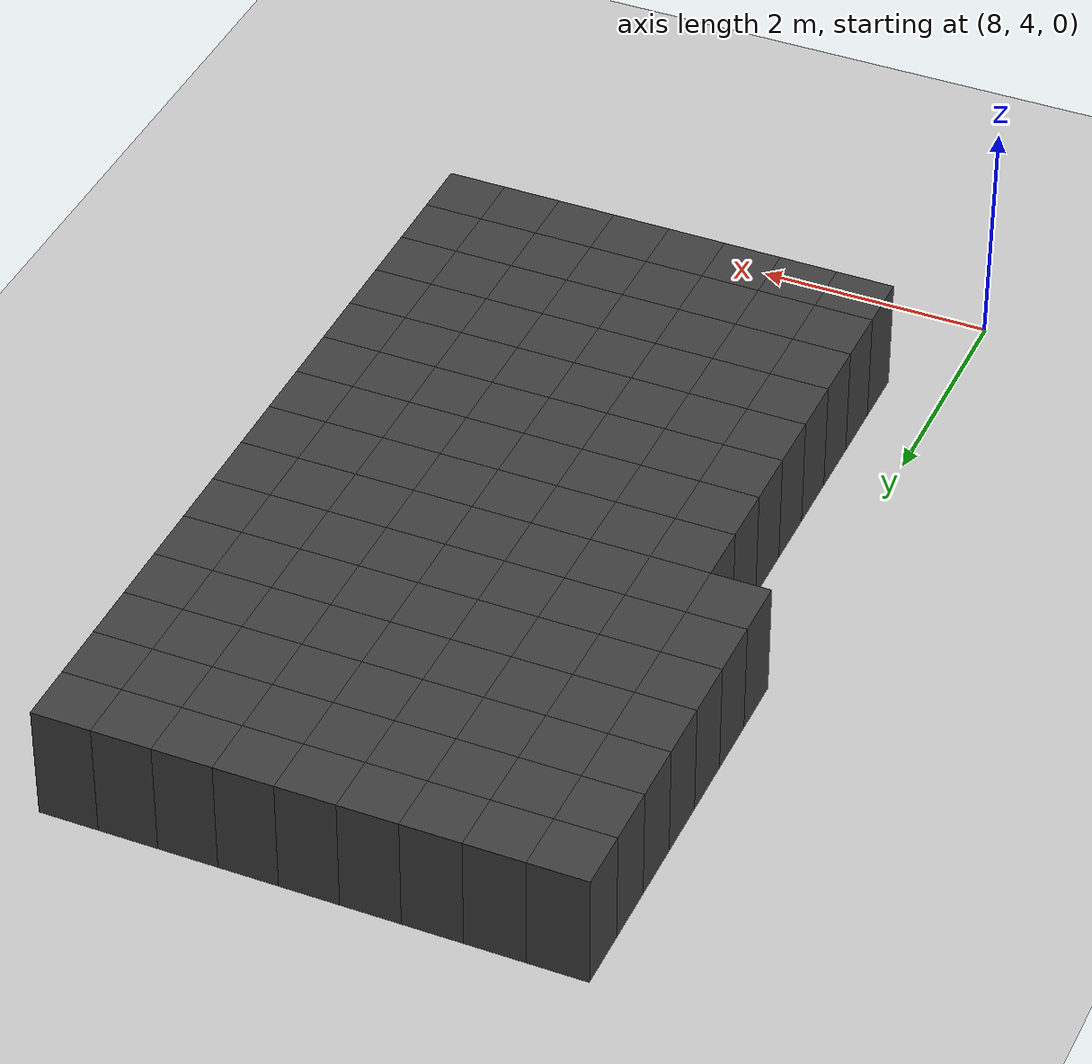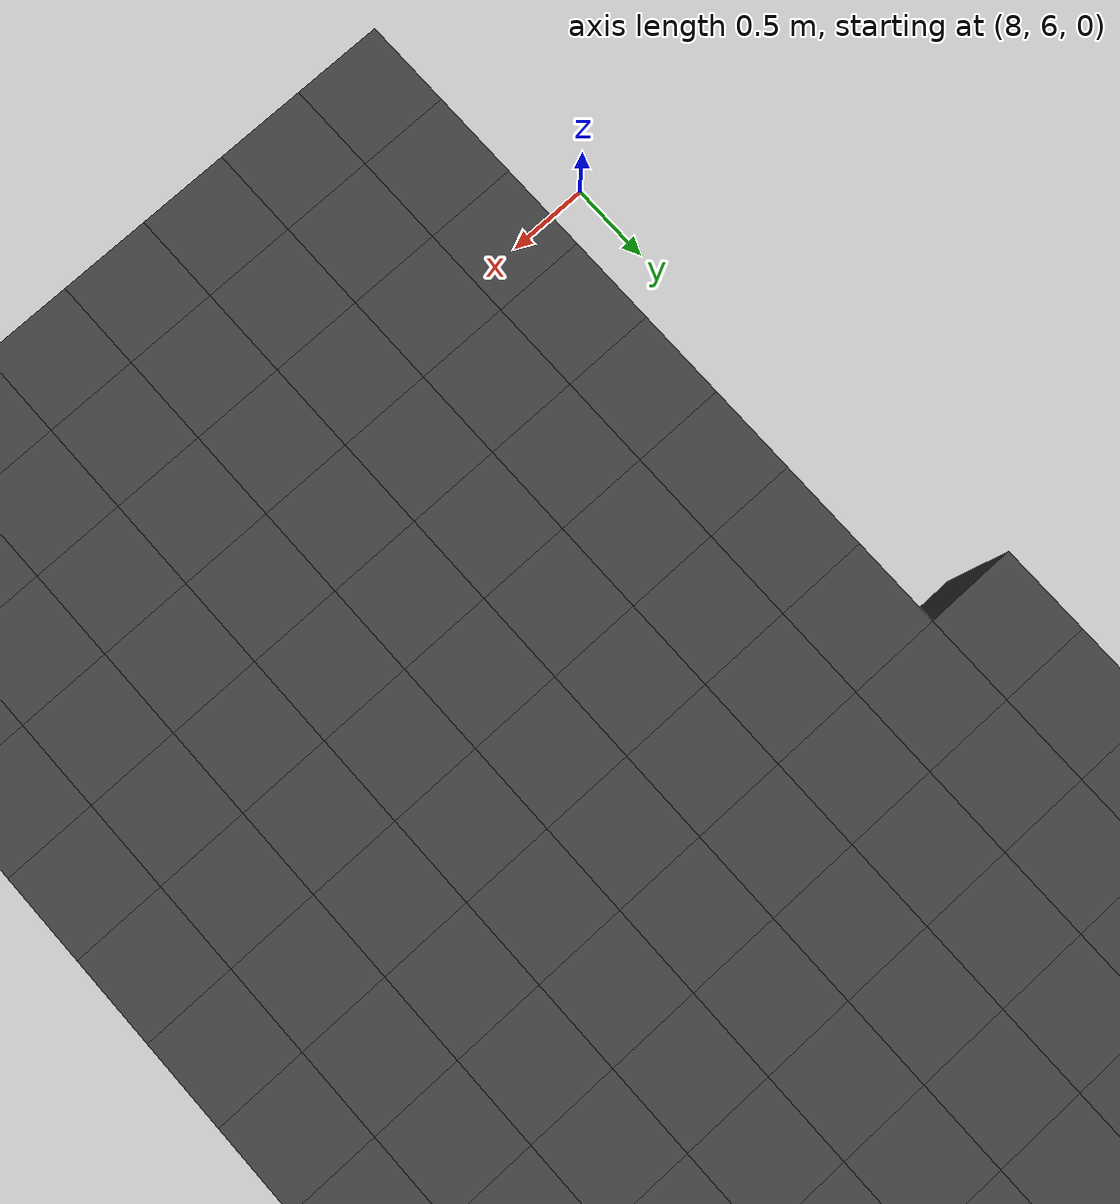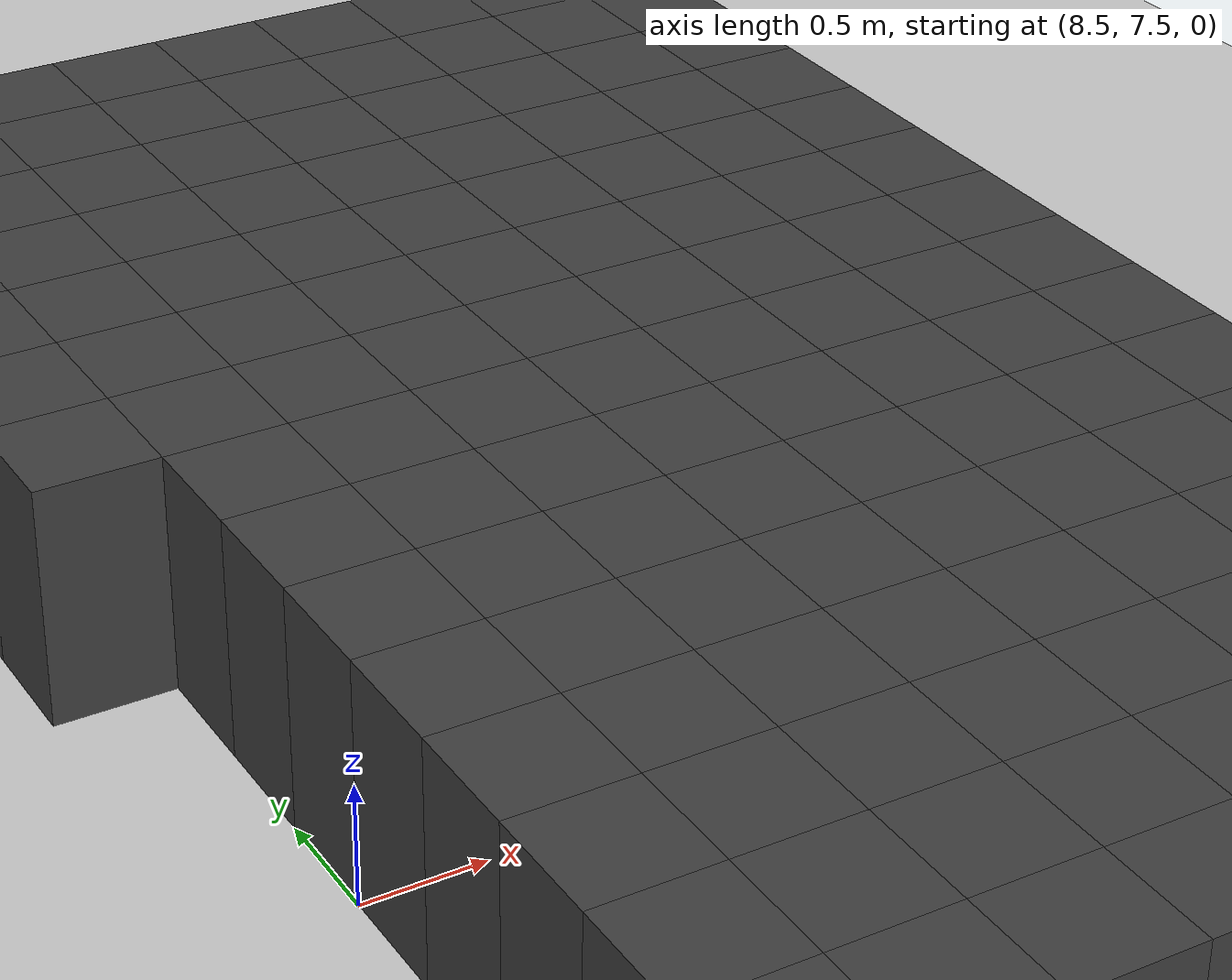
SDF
<sdf version="1.7">
 <world name="map_14056">
  <model name="ground_plane">
   <static>true</static>
   <link name="link">
    <collision name="collision">
     <geometry><plane><normal>0 0 1</normal><size>200 200</size></plane></geometry>
    </collision>
    <visual name="visual">
     <geometry><plane><normal>0 0 1</normal><size>200 200</size></plane></geometry>
     <material><ambient>0.8 0.8 0.8 1</ambient><diffuse>0.8 0.8 0.8 1</diffuse></material>
    </visual>
   </link>
  </model>
  <model name="maze_environment">
   <static>true</static>
   <link name="wall_41">
    <pose>8.250 12.250 0.500 0 0 0</pose>
    <collision name="col"><geometry><box><size>0.5 0.5 1.0</size></box></geometry></collision>
    <visual name="vis">
     <geometry><box><size>0.5 0.5 1.0</size></box></geometry>
     <material><ambient>0.15 0.15 0.15 1</ambient><diffuse>0.25 0.25 0.25 1</diffuse></material>
    </visual>
   </link>
   <link name="wall_42">
    <pose>8.750 12.250 0.500 0 0 0</pose>
    <collision name="col"><geometry><box><size>0.5 0.5 1.0</size></box></geometry></collision>
    <visual name="vis">
     <geometry><box><size>0.5 0.5 1.0</size></box></geometry>
     <material><ambient>0.15 0.15 0.15 1</ambient><diffuse>0.25 0.25 0.25 1</diffuse></material>
    </visual>
   </link>
   <link name="wall_43">
    <pose>9.250 12.250 0.500 0 0 0</pose>
    <collision name="col"><geometry><box><size>0.5 0.5 1.0</size></box></geometry></collision>
    <visual name="vis">
     <geometry><box><size>0.5 0.5 1.0</size></box></geometry>
     <material><ambient>0.15 0.15 0.15 1</ambient><diffuse>0.25 0.25 0.25 1</diffuse></material>
    </visual>
   </link>
   <link name="wall_44">
    <pose>9.750 12.250 0.500 0 0 0</pose>
    <collision name="col"><geometry><box><size>0.5 0.5 1.0</size></box></geometry></collision>
    <visual name="vis">
     <geometry><box><size>0.5 0.5 1.0</size></box></geometry>
     <material><ambient>0.15 0.15 0.15 1</ambient><diffuse>0.25 0.25 0.25 1</diffuse></material>
    </visual>
   </link>
   <link name="wall_45">
    <pose>10.250 12.250 0.500 0 0 0</pose>
    <collision name="col"><geometry><box><size>0.5 0.5 1.0</size></box></geometry></collision>
    <visual name="vis">
     <geometry><box><size>0.5 0.5 1.0</size></box></geometry>
     <material><ambient>0.15 0.15 0.15 1</ambient><diffuse>0.25 0.25 0.25 1</diffuse></material>
    </visual>
   </link>
   <link name="wall_46">
    <pose>10.750 12.250 0.500 0 0 0</pose>
    <collision name="col"><geometry><box><size>0.5 0.5 1.0</size></box></geometry></collision>
    <visual name="vis">
     <geometry><box><size>0.5 0.5 1.0</size></box></geometry>
     <material><ambient>0.15 0.15 0.15 1</ambient><diffuse>0.25 0.25 0.25 1</diffuse></material>
    </visual>
   </link>
   <link name="wall_47">
    <pose>11.250 12.250 0.500 0 0 0</pose>
    <collision name="col"><geometry><box><size>0.5 0.5 1.0</size></box></geometry></collision>
    <visual name="vis">
     <geometry><box><size>0.5 0.5 1.0</size></box></geometry>
     <material><ambient>0.15 0.15 0.15 1</ambient><diffuse>0.25 0.25 0.25 1</diffuse></material>
    </visual>
   </link>
   <link name="wall_48">
    <pose>11.750 12.250 0.500 0 0 0</pose>
    <collision name="col"><geometry><box><size>0.5 0.5 1.0</size></box></geometry></collision>
    <visual name="vis">
     <geometry><box><size>0.5 0.5 1.0</size></box></geometry>
     <material><ambient>0.15 0.15 0.15 1</ambient><diffuse>0.25 0.25 0.25 1</diffuse></material>
    </visual>
   </link>
   <link name="wall_49">
    <pose>12.250 12.250 0.500 0 0 0</pose>
    <collision name="col"><geometry><box><size>0.5 0.5 1.0</size></box></geometry></collision>
    <visual name="vis">
     <geometry><box><size>0.5 0.5 1.0</size></box></geometry>
     <material><ambient>0.15 0.15 0.15 1</ambient><diffuse>0.25 0.25 0.25 1</diffuse></material>
    </visual>
   </link>
   <link name="wall_88">
    <pose>8.250 11.750 0.500 0 0 0</pose>
    <collision name="col"><geometry><box><size>0.5 0.5 1.0</size></box></geometry></collision>
    <visual name="vis">
     <geometry><box><size>0.5 0.5 1.0</size></box></geometry>
     <material><ambient>0.15 0.15 0.15 1</ambient><diffuse>0.25 0.25 0.25 1</diffuse></material>
    </visual>
   </link>
   <link name="wall_89">
    <pose>8.750 11.750 0.500 0 0 0</pose>
    <collision name="col"><geometry><box><size>0.5 0.5 1.0</size></box></geometry></collision>
    <visual name="vis">
     <geometry><box><size>0.5 0.5 1.0</size></box></geometry>
     <material><ambient>0.15 0.15 0.15 1</ambient><diffuse>0.25 0.25 0.25 1</diffuse></material>
    </visual>
   </link>
   <link name="wall_90">
    <pose>9.250 11.750 0.500 0 0 0</pose>
    <collision name="col"><geometry><box><size>0.5 0.5 1.0</size></box></geometry></collision>
    <visual name="vis">
     <geometry><box><size>0.5 0.5 1.0</size></box></geometry>
     <material><ambient>0.15 0.15 0.15 1</ambient><diffuse>0.25 0.25 0.25 1</diffuse></material>
    </visual>
   </link>
   <link name="wall_91">
    <pose>9.750 11.750 0.500 0 0 0</pose>
    <collision name="col"><geometry><box><size>0.5 0.5 1.0</size></box></geometry></collision>
    <visual name="vis">
     <geometry><box><size>0.5 0.5 1.0</size></box></geometry>
     <material><ambient>0.15 0.15 0.15 1</ambient><diffuse>0.25 0.25 0.25 1</diffuse></material>
    </visual>
   </link>
   <link name="wall_92">
    <pose>10.250 11.750 0.500 0 0 0</pose>
    <collision name="col"><geometry><box><size>0.5 0.5 1.0</size></box></geometry></collision>
    <visual name="vis">
     <geometry><box><size>0.5 0.5 1.0</size></box></geometry>
     <material><ambient>0.15 0.15 0.15 1</ambient><diffuse>0.25 0.25 0.25 1</diffuse></material>
    </visual>
   </link>
   <link name="wall_93">
    <pose>10.750 11.750 0.500 0 0 0</pose>
    <collision name="col"><geometry><box><size>0.5 0.5 1.0</size></box></geometry></collision>
    <visual name="vis">
     <geometry><box><size>0.5 0.5 1.0</size></box></geometry>
     <material><ambient>0.15 0.15 0.15 1</ambient><diffuse>0.25 0.25 0.25 1</diffuse></material>
    </visual>
   </link>
   <link name="wall_94">
    <pose>11.250 11.750 0.500 0 0 0</pose>
    <collision name="col"><geometry><box><size>0.5 0.5 1.0</size></box></geometry></collision>
    <visual name="vis">
     <geometry><box><size>0.5 0.5 1.0</size></box></geometry>
     <material><ambient>0.15 0.15 0.15 1</ambient><diffuse>0.25 0.25 0.25 1</diffuse></material>
    </visual>
   </link>
   <link name="wall_95">
    <pose>11.750 11.750 0.500 0 0 0</pose>
    <collision name="col"><geometry><box><size>0.5 0.5 1.0</size></box></geometry></collision>
    <visual name="vis">
     <geometry><box><size>0.5 0.5 1.0</size></box></geometry>
     <material><ambient>0.15 0.15 0.15 1</ambient><diffuse>0.25 0.25 0.25 1</diffuse></material>
    </visual>
   </link>
   <link name="wall_96">
    <pose>12.250 11.750 0.500 0 0 0</pose>
    <collision name="col"><geometry><box><size>0.5 0.5 1.0</size></box></geometry></collision>
    <visual name="vis">
     <geometry><box><size>0.5 0.5 1.0</size></box></geometry>
     <material><ambient>0.15 0.15 0.15 1</ambient><diffuse>0.25 0.25 0.25 1</diffuse></material>
    </visual>
   </link>
   <link name="wall_127">
    <pose>8.250 11.250 0.500 0 0 0</pose>
    <collision name="col"><geometry><box><size>0.5 0.5 1.0</size></box></geometry></collision>
    <visual name="vis">
     <geometry><box><size>0.5 0.5 1.0</size></box></geometry>
     <material><ambient>0.15 0.15 0.15 1</ambient><diffuse>0.25 0.25 0.25 1</diffuse></material>
    </visual>
   </link>
   <link name="wall_128">
    <pose>8.750 11.250 0.500 0 0 0</pose>
    <collision name="col"><geometry><box><size>0.5 0.5 1.0</size></box></geometry></collision>
    <visual name="vis">
     <geometry><box><size>0.5 0.5 1.0</size></box></geometry>
     <material><ambient>0.15 0.15 0.15 1</ambient><diffuse>0.25 0.25 0.25 1</diffuse></material>
    </visual>
   </link>
   <link name="wall_129">
    <pose>9.250 11.250 0.500 0 0 0</pose>
    <collision name="col"><geometry><box><size>0.5 0.5 1.0</size></box></geometry></collision>
    <visual name="vis">
     <geometry><box><size>0.5 0.5 1.0</size></box></geometry>
     <material><ambient>0.15 0.15 0.15 1</ambient><diffuse>0.25 0.25 0.25 1</diffuse></material>
    </visual>
   </link>
   <link name="wall_130">
    <pose>9.750 11.250 0.500 0 0 0</pose>
    <collision name="col"><geometry><box><size>0.5 0.5 1.0</size></box></geometry></collision>
    <visual name="vis">
     <geometry><box><size>0.5 0.5 1.0</size></box></geometry>
     <material><ambient>0.15 0.15 0.15 1</ambient><diffuse>0.25 0.25 0.25 1</diffuse></material>
    </visual>
   </link>
   <link name="wall_131">
    <pose>10.250 11.250 0.500 0 0 0</pose>
    <collision name="col"><geometry><box><size>0.5 0.5 1.0</size></box></geometry></collision>
    <visual name="vis">
     <geometry><box><size>0.5 0.5 1.0</size></box></geometry>
     <material><ambient>0.15 0.15 0.15 1</ambient><diffuse>0.25 0.25 0.25 1</diffuse></material>
    </visual>
   </link>
   <link name="wall_132">
    <pose>10.750 11.250 0.500 0 0 0</pose>
    <collision name="col"><geometry><box><size>0.5 0.5 1.0</size></box></geometry></collision>
    <visual name="vis">
     <geometry><box><size>0.5 0.5 1.0</size></box></geometry>
     <material><ambient>0.15 0.15 0.15 1</ambient><diffuse>0.25 0.25 0.25 1</diffuse></material>
    </visual>
   </link>
   <link name="wall_133">
    <pose>11.250 11.250 0.500 0 0 0</pose>
    <collision name="col"><geometry><box><size>0.5 0.5 1.0</size></box></geometry></collision>
    <visual name="vis">
     <geometry><box><size>0.5 0.5 1.0</size></box></geometry>
     <material><ambient>0.15 0.15 0.15 1</ambient><diffuse>0.25 0.25 0.25 1</diffuse></material>
    </visual>
   </link>
   <link name="wall_134">
    <pose>11.750 11.250 0.500 0 0 0</pose>
    <collision name="col"><geometry><box><size>0.5 0.5 1.0</size></box></geometry></collision>
    <visual name="vis">
     <geometry><box><size>0.5 0.5 1.0</size></box></geometry>
     <material><ambient>0.15 0.15 0.15 1</ambient><diffuse>0.25 0.25 0.25 1</diffuse></material>
    </visual>
   </link>
   <link name="wall_135">
    <pose>12.250 11.250 0.500 0 0 0</pose>
    <collision name="col"><geometry><box><size>0.5 0.5 1.0</size></box></geometry></collision>
    <visual name="vis">
     <geometry><box><size>0.5 0.5 1.0</size></box></geometry>
     <material><ambient>0.15 0.15 0.15 1</ambient><diffuse>0.25 0.25 0.25 1</diffuse></material>
    </visual>
   </link>
   <link name="wall_166">
    <pose>8.250 10.750 0.500 0 0 0</pose>
    <collision name="col"><geometry><box><size>0.5 0.5 1.0</size></box></geometry></collision>
    <visual name="vis">
     <geometry><box><size>0.5 0.5 1.0</size></box></geometry>
     <material><ambient>0.15 0.15 0.15 1</ambient><diffuse>0.25 0.25 0.25 1</diffuse></material>
    </visual>
   </link>
   <link name="wall_167">
    <pose>8.750 10.750 0.500 0 0 0</pose>
    <collision name="col"><geometry><box><size>0.5 0.5 1.0</size></box></geometry></collision>
    <visual name="vis">
     <geometry><box><size>0.5 0.5 1.0</size></box></geometry>
     <material><ambient>0.15 0.15 0.15 1</ambient><diffuse>0.25 0.25 0.25 1</diffuse></material>
    </visual>
   </link>
   <link name="wall_168">
    <pose>9.250 10.750 0.500 0 0 0</pose>
    <collision name="col"><geometry><box><size>0.5 0.5 1.0</size></box></geometry></collision>
    <visual name="vis">
     <geometry><box><size>0.5 0.5 1.0</size></box></geometry>
     <material><ambient>0.15 0.15 0.15 1</ambient><diffuse>0.25 0.25 0.25 1</diffuse></material>
    </visual>
   </link>
   <link name="wall_169">
    <pose>9.750 10.750 0.500 0 0 0</pose>
    <collision name="col"><geometry><box><size>0.5 0.5 1.0</size></box></geometry></collision>
    <visual name="vis">
     <geometry><box><size>0.5 0.5 1.0</size></box></geometry>
     <material><ambient>0.15 0.15 0.15 1</ambient><diffuse>0.25 0.25 0.25 1</diffuse></material>
    </visual>
   </link>
   <link name="wall_170">
    <pose>10.250 10.750 0.500 0 0 0</pose>
    <collision name="col"><geometry><box><size>0.5 0.5 1.0</size></box></geometry></collision>
    <visual name="vis">
     <geometry><box><size>0.5 0.5 1.0</size></box></geometry>
     <material><ambient>0.15 0.15 0.15 1</ambient><diffuse>0.25 0.25 0.25 1</diffuse></material>
    </visual>
   </link>
   <link name="wall_171">
    <pose>10.750 10.750 0.500 0 0 0</pose>
    <collision name="col"><geometry><box><size>0.5 0.5 1.0</size></box></geometry></collision>
    <visual name="vis">
     <geometry><box><size>0.5 0.5 1.0</size></box></geometry>
     <material><ambient>0.15 0.15 0.15 1</ambient><diffuse>0.25 0.25 0.25 1</diffuse></material>
    </visual>
   </link>
   <link name="wall_172">
    <pose>11.250 10.750 0.500 0 0 0</pose>
    <collision name="col"><geometry><box><size>0.5 0.5 1.0</size></box></geometry></collision>
    <visual name="vis">
     <geometry><box><size>0.5 0.5 1.0</size></box></geometry>
     <material><ambient>0.15 0.15 0.15 1</ambient><diffuse>0.25 0.25 0.25 1</diffuse></material>
    </visual>
   </link>
   <link name="wall_173">
    <pose>11.750 10.750 0.500 0 0 0</pose>
    <collision name="col"><geometry><box><size>0.5 0.5 1.0</size></box></geometry></collision>
    <visual name="vis">
     <geometry><box><size>0.5 0.5 1.0</size></box></geometry>
     <material><ambient>0.15 0.15 0.15 1</ambient><diffuse>0.25 0.25 0.25 1</diffuse></material>
    </visual>
   </link>
   <link name="wall_174">
    <pose>12.250 10.750 0.500 0 0 0</pose>
    <collision name="col"><geometry><box><size>0.5 0.5 1.0</size></box></geometry></collision>
    <visual name="vis">
     <geometry><box><size>0.5 0.5 1.0</size></box></geometry>
     <material><ambient>0.15 0.15 0.15 1</ambient><diffuse>0.25 0.25 0.25 1</diffuse></material>
    </visual>
   </link>
   <link name="wall_207">
    <pose>8.250 10.250 0.500 0 0 0</pose>
    <collision name="col"><geometry><box><size>0.5 0.5 1.0</size></box></geometry></collision>
    <visual name="vis">
     <geometry><box><size>0.5 0.5 1.0</size></box></geometry>
     <material><ambient>0.15 0.15 0.15 1</ambient><diffuse>0.25 0.25 0.25 1</diffuse></material>
    </visual>
   </link>
   <link name="wall_208">
    <pose>8.750 10.250 0.500 0 0 0</pose>
    <collision name="col"><geometry><box><size>0.5 0.5 1.0</size></box></geometry></collision>
    <visual name="vis">
     <geometry><box><size>0.5 0.5 1.0</size></box></geometry>
     <material><ambient>0.15 0.15 0.15 1</ambient><diffuse>0.25 0.25 0.25 1</diffuse></material>
    </visual>
   </link>
   <link name="wall_209">
    <pose>9.250 10.250 0.500 0 0 0</pose>
    <collision name="col"><geometry><box><size>0.5 0.5 1.0</size></box></geometry></collision>
    <visual name="vis">
     <geometry><box><size>0.5 0.5 1.0</size></box></geometry>
     <material><ambient>0.15 0.15 0.15 1</ambient><diffuse>0.25 0.25 0.25 1</diffuse></material>
    </visual>
   </link>
   <link name="wall_210">
    <pose>9.750 10.250 0.500 0 0 0</pose>
    <collision name="col"><geometry><box><size>0.5 0.5 1.0</size></box></geometry></collision>
    <visual name="vis">
     <geometry><box><size>0.5 0.5 1.0</size></box></geometry>
     <material><ambient>0.15 0.15 0.15 1</ambient><diffuse>0.25 0.25 0.25 1</diffuse></material>
    </visual>
   </link>
   <link name="wall_211">
    <pose>10.250 10.250 0.500 0 0 0</pose>
    <collision name="col"><geometry><box><size>0.5 0.5 1.0</size></box></geometry></collision>
    <visual name="vis">
     <geometry><box><size>0.5 0.5 1.0</size></box></geometry>
     <material><ambient>0.15 0.15 0.15 1</ambient><diffuse>0.25 0.25 0.25 1</diffuse></material>
    </visual>
   </link>
   <link name="wall_212">
    <pose>10.750 10.250 0.500 0 0 0</pose>
    <collision name="col"><geometry><box><size>0.5 0.5 1.0</size></box></geometry></collision>
    <visual name="vis">
     <geometry><box><size>0.5 0.5 1.0</size></box></geometry>
     <material><ambient>0.15 0.15 0.15 1</ambient><diffuse>0.25 0.25 0.25 1</diffuse></material>
    </visual>
   </link>
   <link name="wall_213">
    <pose>11.250 10.250 0.500 0 0 0</pose>
    <collision name="col"><geometry><box><size>0.5 0.5 1.0</size></box></geometry></collision>
    <visual name="vis">
     <geometry><box><size>0.5 0.5 1.0</size></box></geometry>
     <material><ambient>0.15 0.15 0.15 1</ambient><diffuse>0.25 0.25 0.25 1</diffuse></material>
    </visual>
   </link>
   <link name="wall_214">
    <pose>11.750 10.250 0.500 0 0 0</pose>
    <collision name="col"><geometry><box><size>0.5 0.5 1.0</size></box></geometry></collision>
    <visual name="vis">
     <geometry><box><size>0.5 0.5 1.0</size></box></geometry>
     <material><ambient>0.15 0.15 0.15 1</ambient><diffuse>0.25 0.25 0.25 1</diffuse></material>
    </visual>
   </link>
   <link name="wall_215">
    <pose>12.250 10.250 0.500 0 0 0</pose>
    <collision name="col"><geometry><box><size>0.5 0.5 1.0</size></box></geometry></collision>
    <visual name="vis">
     <geometry><box><size>0.5 0.5 1.0</size></box></geometry>
     <material><ambient>0.15 0.15 0.15 1</ambient><diffuse>0.25 0.25 0.25 1</diffuse></material>
    </visual>
   </link>
   <link name="wall_248">
    <pose>8.250 9.750 0.500 0 0 0</pose>
    <collision name="col"><geometry><box><size>0.5 0.5 1.0</size></box></geometry></collision>
    <visual name="vis">
     <geometry><box><size>0.5 0.5 1.0</size></box></geometry>
     <material><ambient>0.15 0.15 0.15 1</ambient><diffuse>0.25 0.25 0.25 1</diffuse></material>
    </visual>
   </link>
   <link name="wall_249">
    <pose>8.750 9.750 0.500 0 0 0</pose>
    <collision name="col"><geometry><box><size>0.5 0.5 1.0</size></box></geometry></collision>
    <visual name="vis">
     <geometry><box><size>0.5 0.5 1.0</size></box></geometry>
     <material><ambient>0.15 0.15 0.15 1</ambient><diffuse>0.25 0.25 0.25 1</diffuse></material>
    </visual>
   </link>
   <link name="wall_250">
    <pose>9.250 9.750 0.500 0 0 0</pose>
    <collision name="col"><geometry><box><size>0.5 0.5 1.0</size></box></geometry></collision>
    <visual name="vis">
     <geometry><box><size>0.5 0.5 1.0</size></box></geometry>
     <material><ambient>0.15 0.15 0.15 1</ambient><diffuse>0.25 0.25 0.25 1</diffuse></material>
    </visual>
   </link>
   <link name="wall_251">
    <pose>9.750 9.750 0.500 0 0 0</pose>
    <collision name="col"><geometry><box><size>0.5 0.5 1.0</size></box></geometry></collision>
    <visual name="vis">
     <geometry><box><size>0.5 0.5 1.0</size></box></geometry>
     <material><ambient>0.15 0.15 0.15 1</ambient><diffuse>0.25 0.25 0.25 1</diffuse></material>
    </visual>
   </link>
   <link name="wall_252">
    <pose>10.250 9.750 0.500 0 0 0</pose>
    <collision name="col"><geometry><box><size>0.5 0.5 1.0</size></box></geometry></collision>
    <visual name="vis">
     <geometry><box><size>0.5 0.5 1.0</size></box></geometry>
     <material><ambient>0.15 0.15 0.15 1</ambient><diffuse>0.25 0.25 0.25 1</diffuse></material>
    </visual>
   </link>
   <link name="wall_253">
    <pose>10.750 9.750 0.500 0 0 0</pose>
    <collision name="col"><geometry><box><size>0.5 0.5 1.0</size></box></geometry></collision>
    <visual name="vis">
     <geometry><box><size>0.5 0.5 1.0</size></box></geometry>
     <material><ambient>0.15 0.15 0.15 1</ambient><diffuse>0.25 0.25 0.25 1</diffuse></material>
    </visual>
   </link>
   <link name="wall_254">
    <pose>11.250 9.750 0.500 0 0 0</pose>
    <collision name="col"><geometry><box><size>0.5 0.5 1.0</size></box></geometry></collision>
    <visual name="vis">
     <geometry><box><size>0.5 0.5 1.0</size></box></geometry>
     <material><ambient>0.15 0.15 0.15 1</ambient><diffuse>0.25 0.25 0.25 1</diffuse></material>
    </visual>
   </link>
   <link name="wall_255">
    <pose>11.750 9.750 0.500 0 0 0</pose>
    <collision name="col"><geometry><box><size>0.5 0.5 1.0</size></box></geometry></collision>
    <visual name="vis">
     <geometry><box><size>0.5 0.5 1.0</size></box></geometry>
     <material><ambient>0.15 0.15 0.15 1</ambient><diffuse>0.25 0.25 0.25 1</diffuse></material>
    </visual>
   </link>
   <link name="wall_256">
    <pose>12.250 9.750 0.500 0 0 0</pose>
    <collision name="col"><geometry><box><size>0.5 0.5 1.0</size></box></geometry></collision>
    <visual name="vis">
     <geometry><box><size>0.5 0.5 1.0</size></box></geometry>
     <material><ambient>0.15 0.15 0.15 1</ambient><diffuse>0.25 0.25 0.25 1</diffuse></material>
    </visual>
   </link>
   <link name="wall_281">
    <pose>8.250 9.250 0.500 0 0 0</pose>
    <collision name="col"><geometry><box><size>0.5 0.5 1.0</size></box></geometry></collision>
    <visual name="vis">
     <geometry><box><size>0.5 0.5 1.0</size></box></geometry>
     <material><ambient>0.15 0.15 0.15 1</ambient><diffuse>0.25 0.25 0.25 1</diffuse></material>
    </visual>
   </link>
   <link name="wall_282">
    <pose>8.750 9.250 0.500 0 0 0</pose>
    <collision name="col"><geometry><box><size>0.5 0.5 1.0</size></box></geometry></collision>
    <visual name="vis">
     <geometry><box><size>0.5 0.5 1.0</size></box></geometry>
     <material><ambient>0.15 0.15 0.15 1</ambient><diffuse>0.25 0.25 0.25 1</diffuse></material>
    </visual>
   </link>
   <link name="wall_283">
    <pose>9.250 9.250 0.500 0 0 0</pose>
    <collision name="col"><geometry><box><size>0.5 0.5 1.0</size></box></geometry></collision>
    <visual name="vis">
     <geometry><box><size>0.5 0.5 1.0</size></box></geometry>
     <material><ambient>0.15 0.15 0.15 1</ambient><diffuse>0.25 0.25 0.25 1</diffuse></material>
    </visual>
   </link>
   <link name="wall_284">
    <pose>9.750 9.250 0.500 0 0 0</pose>
    <collision name="col"><geometry><box><size>0.5 0.5 1.0</size></box></geometry></collision>
    <visual name="vis">
     <geometry><box><size>0.5 0.5 1.0</size></box></geometry>
     <material><ambient>0.15 0.15 0.15 1</ambient><diffuse>0.25 0.25 0.25 1</diffuse></material>
    </visual>
   </link>
   <link name="wall_285">
    <pose>10.250 9.250 0.500 0 0 0</pose>
    <collision name="col"><geometry><box><size>0.5 0.5 1.0</size></box></geometry></collision>
    <visual name="vis">
     <geometry><box><size>0.5 0.5 1.0</size></box></geometry>
     <material><ambient>0.15 0.15 0.15 1</ambient><diffuse>0.25 0.25 0.25 1</diffuse></material>
    </visual>
   </link>
   <link name="wall_286">
    <pose>10.750 9.250 0.500 0 0 0</pose>
    <collision name="col"><geometry><box><size>0.5 0.5 1.0</size></box></geometry></collision>
    <visual name="vis">
     <geometry><box><size>0.5 0.5 1.0</size></box></geometry>
     <material><ambient>0.15 0.15 0.15 1</ambient><diffuse>0.25 0.25 0.25 1</diffuse></material>
    </visual>
   </link>
   <link name="wall_287">
    <pose>11.250 9.250 0.500 0 0 0</pose>
    <collision name="col"><geometry><box><size>0.5 0.5 1.0</size></box></geometry></collision>
    <visual name="vis">
     <geometry><box><size>0.5 0.5 1.0</size></box></geometry>
     <material><ambient>0.15 0.15 0.15 1</ambient><diffuse>0.25 0.25 0.25 1</diffuse></material>
    </visual>
   </link>
   <link name="wall_288">
    <pose>11.750 9.250 0.500 0 0 0</pose>
    <collision name="col"><geometry><box><size>0.5 0.5 1.0</size></box></geometry></collision>
    <visual name="vis">
     <geometry><box><size>0.5 0.5 1.0</size></box></geometry>
     <material><ambient>0.15 0.15 0.15 1</ambient><diffuse>0.25 0.25 0.25 1</diffuse></material>
    </visual>
   </link>
   <link name="wall_289">
    <pose>12.250 9.250 0.500 0 0 0</pose>
    <collision name="col"><geometry><box><size>0.5 0.5 1.0</size></box></geometry></collision>
    <visual name="vis">
     <geometry><box><size>0.5 0.5 1.0</size></box></geometry>
     <material><ambient>0.15 0.15 0.15 1</ambient><diffuse>0.25 0.25 0.25 1</diffuse></material>
    </visual>
   </link>
   <link name="wall_310">
    <pose>8.750 8.750 0.500 0 0 0</pose>
    <collision name="col"><geometry><box><size>0.5 0.5 1.0</size></box></geometry></collision>
    <visual name="vis">
     <geometry><box><size>0.5 0.5 1.0</size></box></geometry>
     <material><ambient>0.15 0.15 0.15 1</ambient><diffuse>0.25 0.25 0.25 1</diffuse></material>
    </visual>
   </link>
   <link name="wall_311">
    <pose>9.250 8.750 0.500 0 0 0</pose>
    <collision name="col"><geometry><box><size>0.5 0.5 1.0</size></box></geometry></collision>
    <visual name="vis">
     <geometry><box><size>0.5 0.5 1.0</size></box></geometry>
     <material><ambient>0.15 0.15 0.15 1</ambient><diffuse>0.25 0.25 0.25 1</diffuse></material>
    </visual>
   </link>
   <link name="wall_312">
    <pose>9.750 8.750 0.500 0 0 0</pose>
    <collision name="col"><geometry><box><size>0.5 0.5 1.0</size></box></geometry></collision>
    <visual name="vis">
     <geometry><box><size>0.5 0.5 1.0</size></box></geometry>
     <material><ambient>0.15 0.15 0.15 1</ambient><diffuse>0.25 0.25 0.25 1</diffuse></material>
    </visual>
   </link>
   <link name="wall_313">
    <pose>10.250 8.750 0.500 0 0 0</pose>
    <collision name="col"><geometry><box><size>0.5 0.5 1.0</size></box></geometry></collision>
    <visual name="vis">
     <geometry><box><size>0.5 0.5 1.0</size></box></geometry>
     <material><ambient>0.15 0.15 0.15 1</ambient><diffuse>0.25 0.25 0.25 1</diffuse></material>
    </visual>
   </link>
   <link name="wall_314">
    <pose>10.750 8.750 0.500 0 0 0</pose>
    <collision name="col"><geometry><box><size>0.5 0.5 1.0</size></box></geometry></collision>
    <visual name="vis">
     <geometry><box><size>0.5 0.5 1.0</size></box></geometry>
     <material><ambient>0.15 0.15 0.15 1</ambient><diffuse>0.25 0.25 0.25 1</diffuse></material>
    </visual>
   </link>
   <link name="wall_315">
    <pose>11.250 8.750 0.500 0 0 0</pose>
    <collision name="col"><geometry><box><size>0.5 0.5 1.0</size></box></geometry></collision>
    <visual name="vis">
     <geometry><box><size>0.5 0.5 1.0</size></box></geometry>
     <material><ambient>0.15 0.15 0.15 1</ambient><diffuse>0.25 0.25 0.25 1</diffuse></material>
    </visual>
   </link>
   <link name="wall_316">
    <pose>11.750 8.750 0.500 0 0 0</pose>
    <collision name="col"><geometry><box><size>0.5 0.5 1.0</size></box></geometry></collision>
    <visual name="vis">
     <geometry><box><size>0.5 0.5 1.0</size></box></geometry>
     <material><ambient>0.15 0.15 0.15 1</ambient><diffuse>0.25 0.25 0.25 1</diffuse></material>
    </visual>
   </link>
   <link name="wall_317">
    <pose>12.250 8.750 0.500 0 0 0</pose>
    <collision name="col"><geometry><box><size>0.5 0.5 1.0</size></box></geometry></collision>
    <visual name="vis">
     <geometry><box><size>0.5 0.5 1.0</size></box></geometry>
     <material><ambient>0.15 0.15 0.15 1</ambient><diffuse>0.25 0.25 0.25 1</diffuse></material>
    </visual>
   </link>
   <link name="wall_337">
    <pose>8.750 8.250 0.500 0 0 0</pose>
    <collision name="col"><geometry><box><size>0.5 0.5 1.0</size></box></geometry></collision>
    <visual name="vis">
     <geometry><box><size>0.5 0.5 1.0</size></box></geometry>
     <material><ambient>0.15 0.15 0.15 1</ambient><diffuse>0.25 0.25 0.25 1</diffuse></material>
    </visual>
   </link>
   <link name="wall_338">
    <pose>9.250 8.250 0.500 0 0 0</pose>
    <collision name="col"><geometry><box><size>0.5 0.5 1.0</size></box></geometry></collision>
    <visual name="vis">
     <geometry><box><size>0.5 0.5 1.0</size></box></geometry>
     <material><ambient>0.15 0.15 0.15 1</ambient><diffuse>0.25 0.25 0.25 1</diffuse></material>
    </visual>
   </link>
   <link name="wall_339">
    <pose>9.750 8.250 0.500 0 0 0</pose>
    <collision name="col"><geometry><box><size>0.5 0.5 1.0</size></box></geometry></collision>
    <visual name="vis">
     <geometry><box><size>0.5 0.5 1.0</size></box></geometry>
     <material><ambient>0.15 0.15 0.15 1</ambient><diffuse>0.25 0.25 0.25 1</diffuse></material>
    </visual>
   </link>
   <link name="wall_340">
    <pose>10.250 8.250 0.500 0 0 0</pose>
    <collision name="col"><geometry><box><size>0.5 0.5 1.0</size></box></geometry></collision>
    <visual name="vis">
     <geometry><box><size>0.5 0.5 1.0</size></box></geometry>
     <material><ambient>0.15 0.15 0.15 1</ambient><diffuse>0.25 0.25 0.25 1</diffuse></material>
    </visual>
   </link>
   <link name="wall_341">
    <pose>10.750 8.250 0.500 0 0 0</pose>
    <collision name="col"><geometry><box><size>0.5 0.5 1.0</size></box></geometry></collision>
    <visual name="vis">
     <geometry><box><size>0.5 0.5 1.0</size></box></geometry>
     <material><ambient>0.15 0.15 0.15 1</ambient><diffuse>0.25 0.25 0.25 1</diffuse></material>
    </visual>
   </link>
   <link name="wall_342">
    <pose>11.250 8.250 0.500 0 0 0</pose>
    <collision name="col"><geometry><box><size>0.5 0.5 1.0</size></box></geometry></collision>
    <visual name="vis">
     <geometry><box><size>0.5 0.5 1.0</size></box></geometry>
     <material><ambient>0.15 0.15 0.15 1</ambient><diffuse>0.25 0.25 0.25 1</diffuse></material>
    </visual>
   </link>
   <link name="wall_343">
    <pose>11.750 8.250 0.500 0 0 0</pose>
    <collision name="col"><geometry><box><size>0.5 0.5 1.0</size></box></geometry></collision>
    <visual name="vis">
     <geometry><box><size>0.5 0.5 1.0</size></box></geometry>
     <material><ambient>0.15 0.15 0.15 1</ambient><diffuse>0.25 0.25 0.25 1</diffuse></material>
    </visual>
   </link>
   <link name="wall_344">
    <pose>12.250 8.250 0.500 0 0 0</pose>
    <collision name="col"><geometry><box><size>0.5 0.5 1.0</size></box></geometry></collision>
    <visual name="vis">
     <geometry><box><size>0.5 0.5 1.0</size></box></geometry>
     <material><ambient>0.15 0.15 0.15 1</ambient><diffuse>0.25 0.25 0.25 1</diffuse></material>
    </visual>
   </link>
   <link name="wall_366">
    <pose>8.750 7.750 0.500 0 0 0</pose>
    <collision name="col"><geometry><box><size>0.5 0.5 1.0</size></box></geometry></collision>
    <visual name="vis">
     <geometry><box><size>0.5 0.5 1.0</size></box></geometry>
     <material><ambient>0.15 0.15 0.15 1</ambient><diffuse>0.25 0.25 0.25 1</diffuse></material>
    </visual>
   </link>
   <link name="wall_367">
    <pose>9.250 7.750 0.500 0 0 0</pose>
    <collision name="col"><geometry><box><size>0.5 0.5 1.0</size></box></geometry></collision>
    <visual name="vis">
     <geometry><box><size>0.5 0.5 1.0</size></box></geometry>
     <material><ambient>0.15 0.15 0.15 1</ambient><diffuse>0.25 0.25 0.25 1</diffuse></material>
    </visual>
   </link>
   <link name="wall_368">
    <pose>9.750 7.750 0.500 0 0 0</pose>
    <collision name="col"><geometry><box><size>0.5 0.5 1.0</size></box></geometry></collision>
    <visual name="vis">
     <geometry><box><size>0.5 0.5 1.0</size></box></geometry>
     <material><ambient>0.15 0.15 0.15 1</ambient><diffuse>0.25 0.25 0.25 1</diffuse></material>
    </visual>
   </link>
   <link name="wall_369">
    <pose>10.250 7.750 0.500 0 0 0</pose>
    <collision name="col"><geometry><box><size>0.5 0.5 1.0</size></box></geometry></collision>
    <visual name="vis">
     <geometry><box><size>0.5 0.5 1.0</size></box></geometry>
     <material><ambient>0.15 0.15 0.15 1</ambient><diffuse>0.25 0.25 0.25 1</diffuse></material>
    </visual>
   </link>
   <link name="wall_370">
    <pose>10.750 7.750 0.500 0 0 0</pose>
    <collision name="col"><geometry><box><size>0.5 0.5 1.0</size></box></geometry></collision>
    <visual name="vis">
     <geometry><box><size>0.5 0.5 1.0</size></box></geometry>
     <material><ambient>0.15 0.15 0.15 1</ambient><diffuse>0.25 0.25 0.25 1</diffuse></material>
    </visual>
   </link>
   <link name="wall_371">
    <pose>11.250 7.750 0.500 0 0 0</pose>
    <collision name="col"><geometry><box><size>0.5 0.5 1.0</size></box></geometry></collision>
    <visual name="vis">
     <geometry><box><size>0.5 0.5 1.0</size></box></geometry>
     <material><ambient>0.15 0.15 0.15 1</ambient><diffuse>0.25 0.25 0.25 1</diffuse></material>
    </visual>
   </link>
   <link name="wall_372">
    <pose>11.750 7.750 0.500 0 0 0</pose>
    <collision name="col"><geometry><box><size>0.5 0.5 1.0</size></box></geometry></collision>
    <visual name="vis">
     <geometry><box><size>0.5 0.5 1.0</size></box></geometry>
     <material><ambient>0.15 0.15 0.15 1</ambient><diffuse>0.25 0.25 0.25 1</diffuse></material>
    </visual>
   </link>
   <link name="wall_373">
    <pose>12.250 7.750 0.500 0 0 0</pose>
    <collision name="col"><geometry><box><size>0.5 0.5 1.0</size></box></geometry></collision>
    <visual name="vis">
     <geometry><box><size>0.5 0.5 1.0</size></box></geometry>
     <material><ambient>0.15 0.15 0.15 1</ambient><diffuse>0.25 0.25 0.25 1</diffuse></material>
    </visual>
   </link>
   <link name="wall_395">
    <pose>8.750 7.250 0.500 0 0 0</pose>
    <collision name="col"><geometry><box><size>0.5 0.5 1.0</size></box></geometry></collision>
    <visual name="vis">
     <geometry><box><size>0.5 0.5 1.0</size></box></geometry>
     <material><ambient>0.15 0.15 0.15 1</ambient><diffuse>0.25 0.25 0.25 1</diffuse></material>
    </visual>
   </link>
   <link name="wall_396">
    <pose>9.250 7.250 0.500 0 0 0</pose>
    <collision name="col"><geometry><box><size>0.5 0.5 1.0</size></box></geometry></collision>
    <visual name="vis">
     <geometry><box><size>0.5 0.5 1.0</size></box></geometry>
     <material><ambient>0.15 0.15 0.15 1</ambient><diffuse>0.25 0.25 0.25 1</diffuse></material>
    </visual>
   </link>
   <link name="wall_397">
    <pose>9.750 7.250 0.500 0 0 0</pose>
    <collision name="col"><geometry><box><size>0.5 0.5 1.0</size></box></geometry></collision>
    <visual name="vis">
     <geometry><box><size>0.5 0.5 1.0</size></box></geometry>
     <material><ambient>0.15 0.15 0.15 1</ambient><diffuse>0.25 0.25 0.25 1</diffuse></material>
    </visual>
   </link>
   <link name="wall_398">
    <pose>10.250 7.250 0.500 0 0 0</pose>
    <collision name="col"><geometry><box><size>0.5 0.5 1.0</size></box></geometry></collision>
    <visual name="vis">
     <geometry><box><size>0.5 0.5 1.0</size></box></geometry>
     <material><ambient>0.15 0.15 0.15 1</ambient><diffuse>0.25 0.25 0.25 1</diffuse></material>
    </visual>
   </link>
   <link name="wall_399">
    <pose>10.750 7.250 0.500 0 0 0</pose>
    <collision name="col"><geometry><box><size>0.5 0.5 1.0</size></box></geometry></collision>
    <visual name="vis">
     <geometry><box><size>0.5 0.5 1.0</size></box></geometry>
     <material><ambient>0.15 0.15 0.15 1</ambient><diffuse>0.25 0.25 0.25 1</diffuse></material>
    </visual>
   </link>
   <link name="wall_400">
    <pose>11.250 7.250 0.500 0 0 0</pose>
    <collision name="col"><geometry><box><size>0.5 0.5 1.0</size></box></geometry></collision>
    <visual name="vis">
     <geometry><box><size>0.5 0.5 1.0</size></box></geometry>
     <material><ambient>0.15 0.15 0.15 1</ambient><diffuse>0.25 0.25 0.25 1</diffuse></material>
    </visual>
   </link>
   <link name="wall_401">
    <pose>11.750 7.250 0.500 0 0 0</pose>
    <collision name="col"><geometry><box><size>0.5 0.5 1.0</size></box></geometry></collision>
    <visual name="vis">
     <geometry><box><size>0.5 0.5 1.0</size></box></geometry>
     <material><ambient>0.15 0.15 0.15 1</ambient><diffuse>0.25 0.25 0.25 1</diffuse></material>
    </visual>
   </link>
   <link name="wall_402">
    <pose>12.250 7.250 0.500 0 0 0</pose>
    <collision name="col"><geometry><box><size>0.5 0.5 1.0</size></box></geometry></collision>
    <visual name="vis">
     <geometry><box><size>0.5 0.5 1.0</size></box></geometry>
     <material><ambient>0.15 0.15 0.15 1</ambient><diffuse>0.25 0.25 0.25 1</diffuse></material>
    </visual>
   </link>
   <link name="wall_421">
    <pose>8.750 6.750 0.500 0 0 0</pose>
    <collision name="col"><geometry><box><size>0.5 0.5 1.0</size></box></geometry></collision>
    <visual name="vis">
     <geometry><box><size>0.5 0.5 1.0</size></box></geometry>
     <material><ambient>0.15 0.15 0.15 1</ambient><diffuse>0.25 0.25 0.25 1</diffuse></material>
    </visual>
   </link>
   <link name="wall_422">
    <pose>9.250 6.750 0.500 0 0 0</pose>
    <collision name="col"><geometry><box><size>0.5 0.5 1.0</size></box></geometry></collision>
    <visual name="vis">
     <geometry><box><size>0.5 0.5 1.0</size></box></geometry>
     <material><ambient>0.15 0.15 0.15 1</ambient><diffuse>0.25 0.25 0.25 1</diffuse></material>
    </visual>
   </link>
   <link name="wall_423">
    <pose>9.750 6.750 0.500 0 0 0</pose>
    <collision name="col"><geometry><box><size>0.5 0.5 1.0</size></box></geometry></collision>
    <visual name="vis">
     <geometry><box><size>0.5 0.5 1.0</size></box></geometry>
     <material><ambient>0.15 0.15 0.15 1</ambient><diffuse>0.25 0.25 0.25 1</diffuse></material>
    </visual>
   </link>
   <link name="wall_424">
    <pose>10.250 6.750 0.500 0 0 0</pose>
    <collision name="col"><geometry><box><size>0.5 0.5 1.0</size></box></geometry></collision>
    <visual name="vis">
     <geometry><box><size>0.5 0.5 1.0</size></box></geometry>
     <material><ambient>0.15 0.15 0.15 1</ambient><diffuse>0.25 0.25 0.25 1</diffuse></material>
    </visual>
   </link>
   <link name="wall_425">
    <pose>10.750 6.750 0.500 0 0 0</pose>
    <collision name="col"><geometry><box><size>0.5 0.5 1.0</size></box></geometry></collision>
    <visual name="vis">
     <geometry><box><size>0.5 0.5 1.0</size></box></geometry>
     <material><ambient>0.15 0.15 0.15 1</ambient><diffuse>0.25 0.25 0.25 1</diffuse></material>
    </visual>
   </link>
   <link name="wall_426">
    <pose>11.250 6.750 0.500 0 0 0</pose>
    <collision name="col"><geometry><box><size>0.5 0.5 1.0</size></box></geometry></collision>
    <visual name="vis">
     <geometry><box><size>0.5 0.5 1.0</size></box></geometry>
     <material><ambient>0.15 0.15 0.15 1</ambient><diffuse>0.25 0.25 0.25 1</diffuse></material>
    </visual>
   </link>
   <link name="wall_427">
    <pose>11.750 6.750 0.500 0 0 0</pose>
    <collision name="col"><geometry><box><size>0.5 0.5 1.0</size></box></geometry></collision>
    <visual name="vis">
     <geometry><box><size>0.5 0.5 1.0</size></box></geometry>
     <material><ambient>0.15 0.15 0.15 1</ambient><diffuse>0.25 0.25 0.25 1</diffuse></material>
    </visual>
   </link>
   <link name="wall_428">
    <pose>12.250 6.750 0.500 0 0 0</pose>
    <collision name="col"><geometry><box><size>0.5 0.5 1.0</size></box></geometry></collision>
    <visual name="vis">
     <geometry><box><size>0.5 0.5 1.0</size></box></geometry>
     <material><ambient>0.15 0.15 0.15 1</ambient><diffuse>0.25 0.25 0.25 1</diffuse></material>
    </visual>
   </link>
   <link name="wall_444">
    <pose>8.750 6.250 0.500 0 0 0</pose>
    <collision name="col"><geometry><box><size>0.5 0.5 1.0</size></box></geometry></collision>
    <visual name="vis">
     <geometry><box><size>0.5 0.5 1.0</size></box></geometry>
     <material><ambient>0.15 0.15 0.15 1</ambient><diffuse>0.25 0.25 0.25 1</diffuse></material>
    </visual>
   </link>
   <link name="wall_445">
    <pose>9.250 6.250 0.500 0 0 0</pose>
    <collision name="col"><geometry><box><size>0.5 0.5 1.0</size></box></geometry></collision>
    <visual name="vis">
     <geometry><box><size>0.5 0.5 1.0</size></box></geometry>
     <material><ambient>0.15 0.15 0.15 1</ambient><diffuse>0.25 0.25 0.25 1</diffuse></material>
    </visual>
   </link>
   <link name="wall_446">
    <pose>9.750 6.250 0.500 0 0 0</pose>
    <collision name="col"><geometry><box><size>0.5 0.5 1.0</size></box></geometry></collision>
    <visual name="vis">
     <geometry><box><size>0.5 0.5 1.0</size></box></geometry>
     <material><ambient>0.15 0.15 0.15 1</ambient><diffuse>0.25 0.25 0.25 1</diffuse></material>
    </visual>
   </link>
   <link name="wall_447">
    <pose>10.250 6.250 0.500 0 0 0</pose>
    <collision name="col"><geometry><box><size>0.5 0.5 1.0</size></box></geometry></collision>
    <visual name="vis">
     <geometry><box><size>0.5 0.5 1.0</size></box></geometry>
     <material><ambient>0.15 0.15 0.15 1</ambient><diffuse>0.25 0.25 0.25 1</diffuse></material>
    </visual>
   </link>
   <link name="wall_448">
    <pose>10.750 6.250 0.500 0 0 0</pose>
    <collision name="col"><geometry><box><size>0.5 0.5 1.0</size></box></geometry></collision>
    <visual name="vis">
     <geometry><box><size>0.5 0.5 1.0</size></box></geometry>
     <material><ambient>0.15 0.15 0.15 1</ambient><diffuse>0.25 0.25 0.25 1</diffuse></material>
    </visual>
   </link>
   <link name="wall_449">
    <pose>11.250 6.250 0.500 0 0 0</pose>
    <collision name="col"><geometry><box><size>0.5 0.5 1.0</size></box></geometry></collision>
    <visual name="vis">
     <geometry><box><size>0.5 0.5 1.0</size></box></geometry>
     <material><ambient>0.15 0.15 0.15 1</ambient><diffuse>0.25 0.25 0.25 1</diffuse></material>
    </visual>
   </link>
   <link name="wall_450">
    <pose>11.750 6.250 0.500 0 0 0</pose>
    <collision name="col"><geometry><box><size>0.5 0.5 1.0</size></box></geometry></collision>
    <visual name="vis">
     <geometry><box><size>0.5 0.5 1.0</size></box></geometry>
     <material><ambient>0.15 0.15 0.15 1</ambient><diffuse>0.25 0.25 0.25 1</diffuse></material>
    </visual>
   </link>
   <link name="wall_451">
    <pose>12.250 6.250 0.500 0 0 0</pose>
    <collision name="col"><geometry><box><size>0.5 0.5 1.0</size></box></geometry></collision>
    <visual name="vis">
     <geometry><box><size>0.5 0.5 1.0</size></box></geometry>
     <material><ambient>0.15 0.15 0.15 1</ambient><diffuse>0.25 0.25 0.25 1</diffuse></material>
    </visual>
   </link>
   <link name="wall_460">
    <pose>8.750 5.750 0.500 0 0 0</pose>
    <collision name="col"><geometry><box><size>0.5 0.5 1.0</size></box></geometry></collision>
    <visual name="vis">
     <geometry><box><size>0.5 0.5 1.0</size></box></geometry>
     <material><ambient>0.15 0.15 0.15 1</ambient><diffuse>0.25 0.25 0.25 1</diffuse></material>
    </visual>
   </link>
   <link name="wall_461">
    <pose>9.250 5.750 0.500 0 0 0</pose>
    <collision name="col"><geometry><box><size>0.5 0.5 1.0</size></box></geometry></collision>
    <visual name="vis">
     <geometry><box><size>0.5 0.5 1.0</size></box></geometry>
     <material><ambient>0.15 0.15 0.15 1</ambient><diffuse>0.25 0.25 0.25 1</diffuse></material>
    </visual>
   </link>
   <link name="wall_462">
    <pose>9.750 5.750 0.500 0 0 0</pose>
    <collision name="col"><geometry><box><size>0.5 0.5 1.0</size></box></geometry></collision>
    <visual name="vis">
     <geometry><box><size>0.5 0.5 1.0</size></box></geometry>
     <material><ambient>0.15 0.15 0.15 1</ambient><diffuse>0.25 0.25 0.25 1</diffuse></material>
    </visual>
   </link>
   <link name="wall_463">
    <pose>10.250 5.750 0.500 0 0 0</pose>
    <collision name="col"><geometry><box><size>0.5 0.5 1.0</size></box></geometry></collision>
    <visual name="vis">
     <geometry><box><size>0.5 0.5 1.0</size></box></geometry>
     <material><ambient>0.15 0.15 0.15 1</ambient><diffuse>0.25 0.25 0.25 1</diffuse></material>
    </visual>
   </link>
   <link name="wall_464">
    <pose>10.750 5.750 0.500 0 0 0</pose>
    <collision name="col"><geometry><box><size>0.5 0.5 1.0</size></box></geometry></collision>
    <visual name="vis">
     <geometry><box><size>0.5 0.5 1.0</size></box></geometry>
     <material><ambient>0.15 0.15 0.15 1</ambient><diffuse>0.25 0.25 0.25 1</diffuse></material>
    </visual>
   </link>
   <link name="wall_465">
    <pose>11.250 5.750 0.500 0 0 0</pose>
    <collision name="col"><geometry><box><size>0.5 0.5 1.0</size></box></geometry></collision>
    <visual name="vis">
     <geometry><box><size>0.5 0.5 1.0</size></box></geometry>
     <material><ambient>0.15 0.15 0.15 1</ambient><diffuse>0.25 0.25 0.25 1</diffuse></material>
    </visual>
   </link>
   <link name="wall_466">
    <pose>11.750 5.750 0.500 0 0 0</pose>
    <collision name="col"><geometry><box><size>0.5 0.5 1.0</size></box></geometry></collision>
    <visual name="vis">
     <geometry><box><size>0.5 0.5 1.0</size></box></geometry>
     <material><ambient>0.15 0.15 0.15 1</ambient><diffuse>0.25 0.25 0.25 1</diffuse></material>
    </visual>
   </link>
   <link name="wall_467">
    <pose>12.250 5.750 0.500 0 0 0</pose>
    <collision name="col"><geometry><box><size>0.5 0.5 1.0</size></box></geometry></collision>
    <visual name="vis">
     <geometry><box><size>0.5 0.5 1.0</size></box></geometry>
     <material><ambient>0.15 0.15 0.15 1</ambient><diffuse>0.25 0.25 0.25 1</diffuse></material>
    </visual>
   </link>
   <link name="wall_489">
    <pose>8.750 5.250 0.500 0 0 0</pose>
    <collision name="col"><geometry><box><size>0.5 0.5 1.0</size></box></geometry></collision>
    <visual name="vis">
     <geometry><box><size>0.5 0.5 1.0</size></box></geometry>
     <material><ambient>0.15 0.15 0.15 1</ambient><diffuse>0.25 0.25 0.25 1</diffuse></material>
    </visual>
   </link>
   <link name="wall_490">
    <pose>9.250 5.250 0.500 0 0 0</pose>
    <collision name="col"><geometry><box><size>0.5 0.5 1.0</size></box></geometry></collision>
    <visual name="vis">
     <geometry><box><size>0.5 0.5 1.0</size></box></geometry>
     <material><ambient>0.15 0.15 0.15 1</ambient><diffuse>0.25 0.25 0.25 1</diffuse></material>
    </visual>
   </link>
   <link name="wall_491">
    <pose>9.750 5.250 0.500 0 0 0</pose>
    <collision name="col"><geometry><box><size>0.5 0.5 1.0</size></box></geometry></collision>
    <visual name="vis">
     <geometry><box><size>0.5 0.5 1.0</size></box></geometry>
     <material><ambient>0.15 0.15 0.15 1</ambient><diffuse>0.25 0.25 0.25 1</diffuse></material>
    </visual>
   </link>
   <link name="wall_492">
    <pose>10.250 5.250 0.500 0 0 0</pose>
    <collision name="col"><geometry><box><size>0.5 0.5 1.0</size></box></geometry></collision>
    <visual name="vis">
     <geometry><box><size>0.5 0.5 1.0</size></box></geometry>
     <material><ambient>0.15 0.15 0.15 1</ambient><diffuse>0.25 0.25 0.25 1</diffuse></material>
    </visual>
   </link>
   <link name="wall_493">
    <pose>10.750 5.250 0.500 0 0 0</pose>
    <collision name="col"><geometry><box><size>0.5 0.5 1.0</size></box></geometry></collision>
    <visual name="vis">
     <geometry><box><size>0.5 0.5 1.0</size></box></geometry>
     <material><ambient>0.15 0.15 0.15 1</ambient><diffuse>0.25 0.25 0.25 1</diffuse></material>
    </visual>
   </link>
   <link name="wall_494">
    <pose>11.250 5.250 0.500 0 0 0</pose>
    <collision name="col"><geometry><box><size>0.5 0.5 1.0</size></box></geometry></collision>
    <visual name="vis">
     <geometry><box><size>0.5 0.5 1.0</size></box></geometry>
     <material><ambient>0.15 0.15 0.15 1</ambient><diffuse>0.25 0.25 0.25 1</diffuse></material>
    </visual>
   </link>
   <link name="wall_495">
    <pose>11.750 5.250 0.500 0 0 0</pose>
    <collision name="col"><geometry><box><size>0.5 0.5 1.0</size></box></geometry></collision>
    <visual name="vis">
     <geometry><box><size>0.5 0.5 1.0</size></box></geometry>
     <material><ambient>0.15 0.15 0.15 1</ambient><diffuse>0.25 0.25 0.25 1</diffuse></material>
    </visual>
   </link>
   <link name="wall_496">
    <pose>12.250 5.250 0.500 0 0 0</pose>
    <collision name="col"><geometry><box><size>0.5 0.5 1.0</size></box></geometry></collision>
    <visual name="vis">
     <geometry><box><size>0.5 0.5 1.0</size></box></geometry>
     <material><ambient>0.15 0.15 0.15 1</ambient><diffuse>0.25 0.25 0.25 1</diffuse></material>
    </visual>
   </link>
  </model>
 </world>
</sdf>
